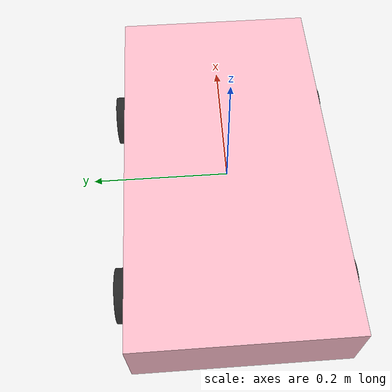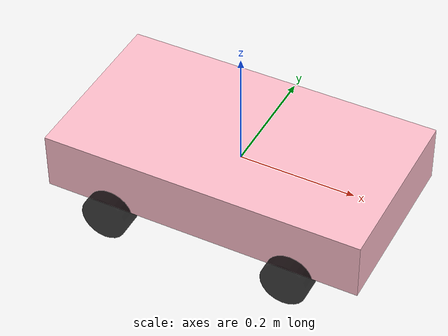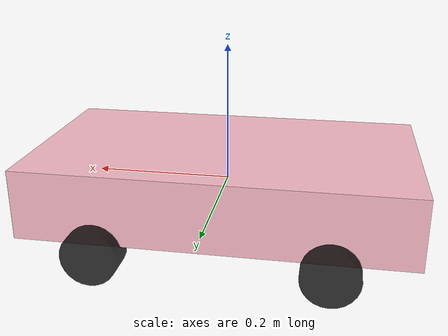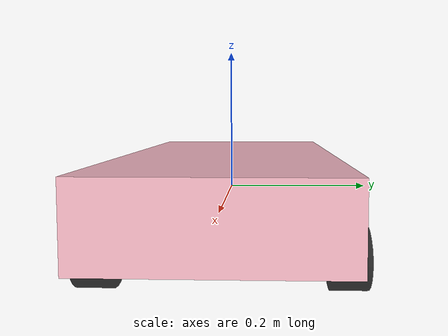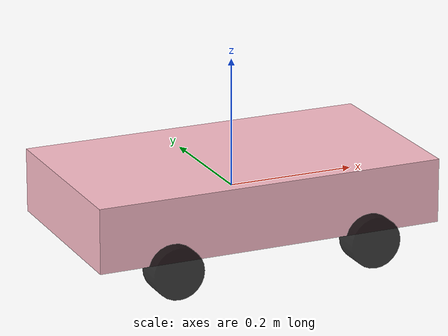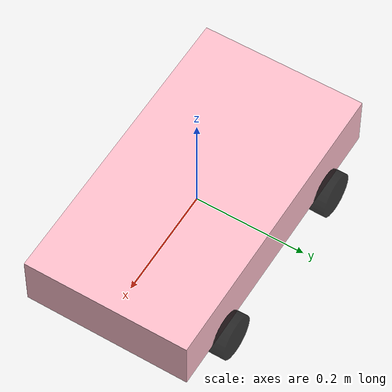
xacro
<!-- car base -->
<robot xmlns:xacro="http://www.ros.org/wiki/xacro">

    <!--color-->
    <material name="yellow">
        <color rgba="0.8 0.8 0.0 0.8"/>
    </material>

    <!-- pink-->
    <material name="red">
        <color rgba="1 0.75 0.8 1.0"/>
    </material>

    <material name="black">
        <color rgba="0.0 0.0 0.0 0.8"/>
    </material>

    <material name="blue">
        <color rgba="0.1 0.1 0.7 0.8"/>
    </material>

    <!--1. contants-->
    <xacro:property name="PI" value="3.1415927" />

    <xacro:property name="car_length" value="0.55" />
    <xacro:property name="car_width" value="0.30" />
    <xacro:property name="car_height" value="0.1" />

    <xacro:property name="wheel_radius" value="0.04" />
    <xacro:property name="wheel_length" value="0.045" />

    <xacro:property name="distance" value="0.05" />

    <!--wheel2baselink joint offsets-->
    <xacro:property name="wheel_x" value="0.16" />
    <xacro:property name="wheel_y" value="${car_width/2}" />
    <xacro:property name="wheel_z" value="${-(car_height/2 + distance - wheel_radius)}" />

    <!--3. base_link -> base_footprint-->
    <link name="virtual_car1_base_link">
        <visual>
            <geometry>
                <box size="${car_length} ${car_width} ${car_height}"/>
            </geometry>
            <material name = "red" />
        </visual>
    </link>

    <!--5. xacro-->
    <xacro:macro name="wheel_func" params="link_name front_rear_flag right_left_flag axis_flag" >
        <link name="${link_name}">
            <visual>
                <geometry>
                    <cylinder radius="${wheel_radius}" length="${wheel_length}"/>
                </geometry>
                <material name="black"/>
                <origin rpy="${PI / 2} 0.0 0.0"/>
            </visual>
        </link>

        <!-- front_rear_flag -> 1(front), -1(rear)-->
        <!-- right_left_flag -> 1(left), -1(right)-->
        <!-- axis_flag -> 1(front), 0(rear)-->
        <joint name="${link_name}2virtual_car1_base_link" type="continuous">
            <parent link="virtual_car1_base_link"/>
            <child link="${link_name}"/>
            <origin xyz="${front_rear_flag * wheel_x} ${right_left_flag * wheel_y} ${wheel_z}"/>
            <axis xyz="0.0 1.0 ${axis_flag}"/>
        </joint>
    </xacro:macro>

    <!--6. call xacro-->
    <xacro:wheel_func link_name="front_left" front_rear_flag="1" right_left_flag="1" axis_flag="1" />
    <xacro:wheel_func link_name="front_right" front_rear_flag="1" right_left_flag="-1" axis_flag="1" />

    <xacro:wheel_func link_name="rear_right" front_rear_flag="-1" right_left_flag="-1" axis_flag="0" />
    <xacro:wheel_func link_name="rear_left" front_rear_flag="-1" right_left_flag="1" axis_flag="0" />

</robot>
